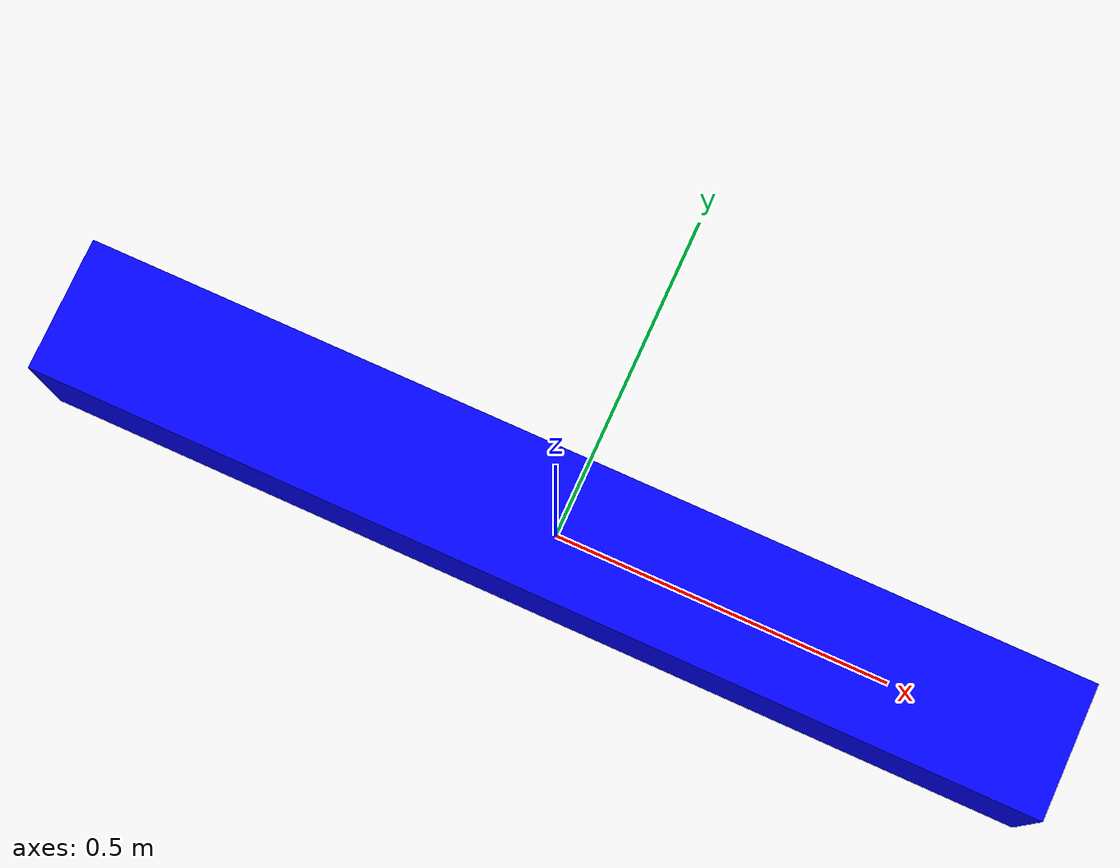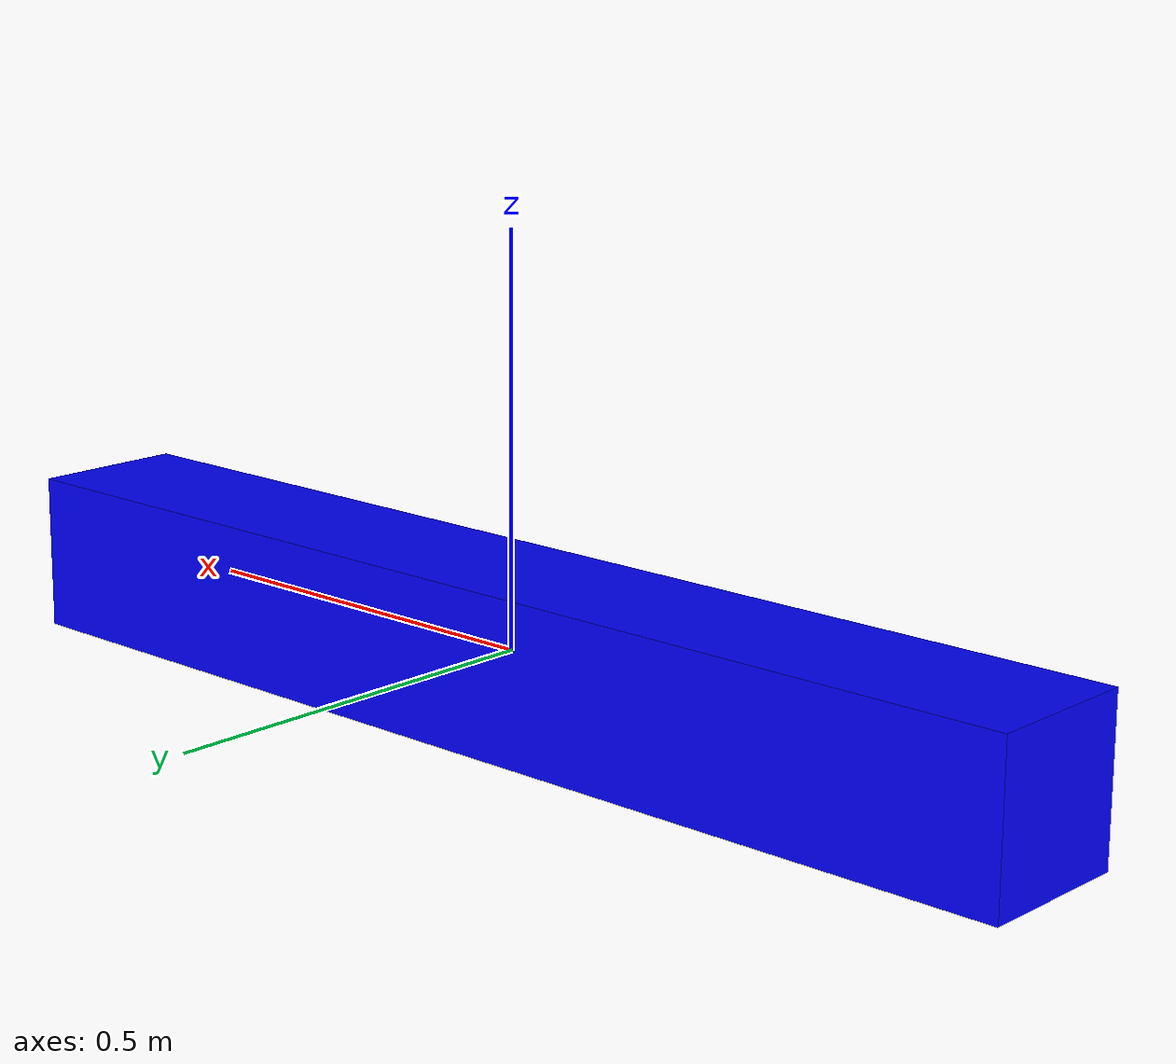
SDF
<?xml version="1.0" ?>
<sdf version="1.5">
    <model name="paddle">
			<static>false</static>
      <link name="base_link">

      <inertial>
        <pose>0 0 0 0 0 0</pose>
        <mass>1000000</mass>
				<inertia>
					<ixx>1000000</ixx>
					<ixy>0</ixy>
					<ixz>0</ixz>
					<iyy>1000000</iyy>
					<iyz>0</iyz>
					<izz>1000000</izz>
				</inertia>
			</inertial>

        <collision name="collision">
          <geometry>
            <box>
							<size>1.5 0.2 0.2</size>
						</box>
          </geometry>

          <surface>

            <bounce>
              <restitution_coefficient>2.0</restitution_coefficient>
              <threshold>0</threshold>
            </bounce>

						<friction>
							<ode>
								<mu>0.0</mu>
								<mu2>0.0</mu2>
							</ode>
						</friction>

            <contact>
              <ode>
                <max_vel>999</max_vel>
              </ode>
            </contact>

          </surface>

        </collision>

        <visual name="visual">
          <geometry>
            <box>
							<size>1.5 0.2 0.2</size>
						</box>
          </geometry>
					<material>
						<ambient>0.0 0.0 1.0 1</ambient>
						<diffuse>0.0 0.0 1.0 1</diffuse>
						<specular>0.1 0.1 0.1 1</specular>
					</material>
        </visual>

      </link>

			<plugin name="object_controller" filename="libgazebo_ros_planar_move.so">
				<commandTopic>paddle/cmd_vel</commandTopic>
				<odometryTopic>paddle/odom</odometryTopic>
				<odometryFrame>paddle/odom</odometryFrame>
				<odometryRate>50.0</odometryRate>
				<robotBaseFrame>base_link</robotBaseFrame>
				<cmdTimeout>-1.0</cmdTimeout>
			</plugin>

    </model>
</sdf>
